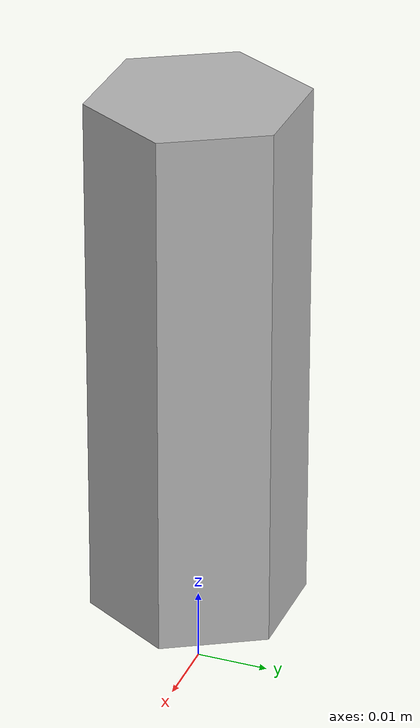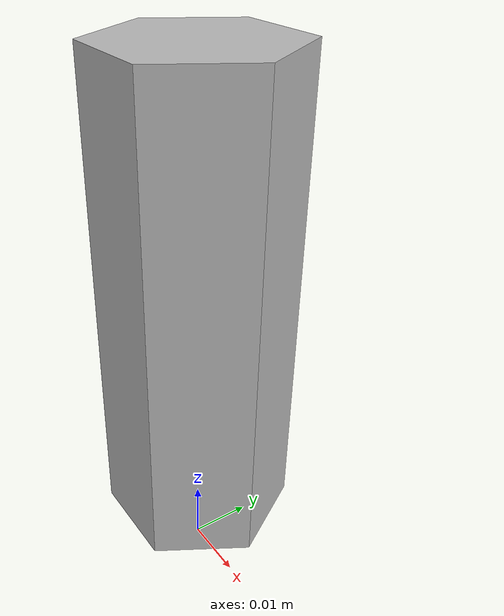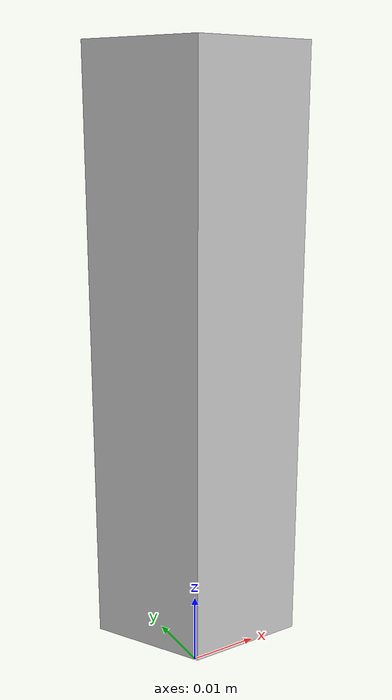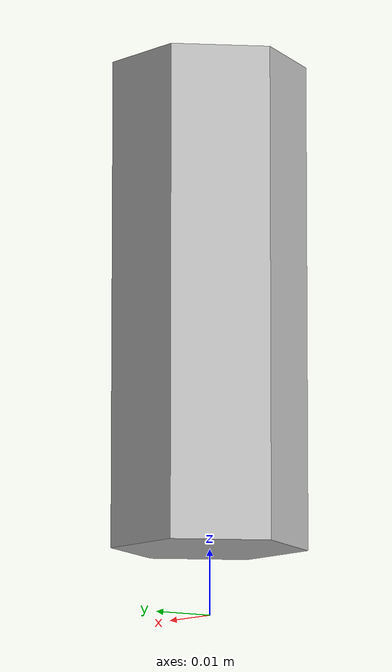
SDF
<sdf version='1.6'>
  <model name='he_prisms'>
    <link name='object (8)'>
      <pose frame=''>0 0 0.01 0 -0 0</pose>
      <inertial>
        <pose frame=''>-0 0 0.0375 0 -0 0</pose>
        <mass>0.043843</mass>
        <inertia>
          <ixx>2.26063e-05</ixx>
          <ixy>-2.58494e-23</ixy>
          <ixz>-4.40679e-22</ixz>
          <iyy>2.26063e-05</iyy>
          <iyz>-9.81185e-22</iyz>
          <izz>4.11024e-06</izz>
        </inertia>
      </inertial>
      <collision name='object_collision'>
        <pose frame=''>0 0 0 1.5708 -0 0</pose>
        <geometry>
          <mesh>
            <scale>1 1 1</scale>
            <uri>model://he_prisms/untitled.dae</uri>
          </mesh>
        </geometry>
        <surface>
          <friction>
            <ode>
              <mu>1.0</mu>
              <mu2>1.0</mu2>
            </ode>
          </friction>
          <contact>
            <ode>
              <kp>100000.0</kp>
              <kd>1.0</kd>
              <min_depth>0.0000001</min_depth>
              <max_vel>0.1</max_vel>
            </ode>
          </contact>
        </surface>
      </collision>
      <visual name='object_visual'>
        <pose frame=''>0 0 0 1.5708 -0 0</pose>
        <geometry>
          <mesh>
            <scale>1 1 1</scale>
            <uri>model://he_prisms/untitled.dae</uri>
          </mesh>
        </geometry>
      </visual>
    </link>
  </model>
</sdf>
